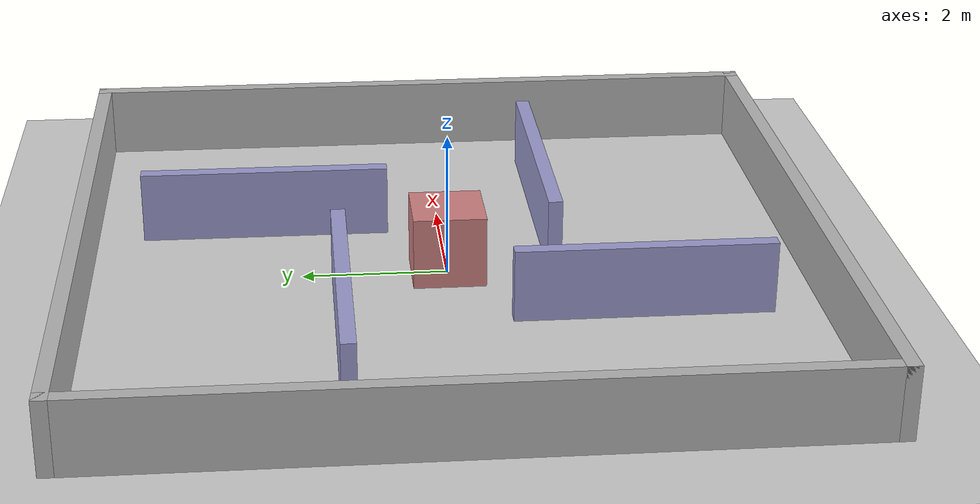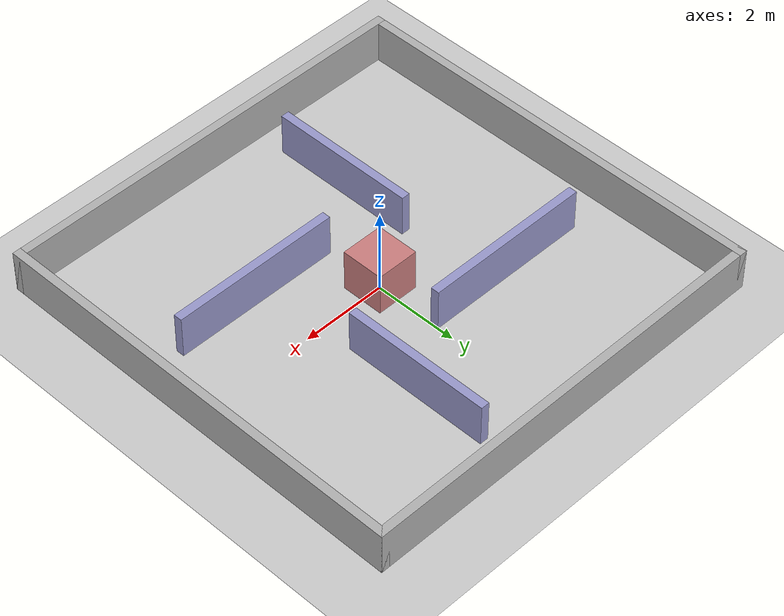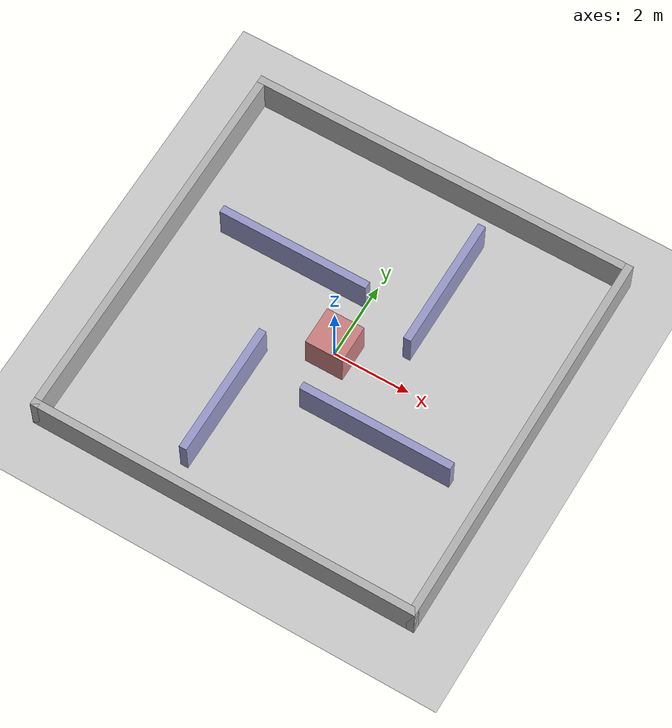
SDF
<?xml version="1.0" ?>
<sdf version="1.6">
  <world name="maze_world">
    <include>
      <uri>model://ground_plane</uri>
    </include>
    <include>
      <uri>model://sun</uri>
    </include>

    <scene>
      <shadows>false</shadows>
    </scene>

    <gui fullscreen='0'>
      <camera name='user_camera'>
        <pose frame=''>0.0 0.0 16.0 0 1.5707 1.5707</pose>
        <view_controller>orbit</view_controller>
      </camera>
    </gui>

    <physics type="ode">
      <real_time_update_rate>1000.0</real_time_update_rate>
      <max_step_size>0.001</max_step_size>
      <real_time_factor>1</real_time_factor>
    </physics>

    <!-- Outer Boundary Walls (10m x 10m) -->
    <model name="wall_north">
      <static>1</static>
      <pose>0 5 0.5 0 0 0</pose>
      <link name="link">
        <collision name="collision"><geometry><box><size>10.2 0.2 1.0</size></box></geometry></collision>
        <visual name="visual">
          <geometry><box><size>10.2 0.2 1.0</size></box></geometry>
          <material><ambient>0.6 0.6 0.6 1</ambient><diffuse>0.7 0.7 0.7 1</diffuse></material>
        </visual>
      </link>
    </model>

    <model name="wall_south">
      <static>1</static>
      <pose>0 -5 0.5 0 0 0</pose>
      <link name="link">
        <collision name="collision"><geometry><box><size>10.2 0.2 1.0</size></box></geometry></collision>
        <visual name="visual">
          <geometry><box><size>10.2 0.2 1.0</size></box></geometry>
          <material><ambient>0.6 0.6 0.6 1</ambient><diffuse>0.7 0.7 0.7 1</diffuse></material>
        </visual>
      </link>
    </model>

    <model name="wall_east">
      <static>1</static>
      <pose>5 0 0.5 0 0 0</pose>
      <link name="link">
        <collision name="collision"><geometry><box><size>0.2 10.2 1.0</size></box></geometry></collision>
        <visual name="visual">
          <geometry><box><size>0.2 10.2 1.0</size></box></geometry>
          <material><ambient>0.6 0.6 0.6 1</ambient><diffuse>0.7 0.7 0.7 1</diffuse></material>
        </visual>
      </link>
    </model>

    <model name="wall_west">
      <static>1</static>
      <pose>-5 0 0.5 0 0 0</pose>
      <link name="link">
        <collision name="collision"><geometry><box><size>0.2 10.2 1.0</size></box></geometry></collision>
        <visual name="visual">
          <geometry><box><size>0.2 10.2 1.0</size></box></geometry>
          <material><ambient>0.6 0.6 0.6 1</ambient><diffuse>0.7 0.7 0.7 1</diffuse></material>
        </visual>
      </link>
    </model>

    <!-- Interior Maze Dividers and Corridors -->
    <model name="inner_wall_1">
      <static>1</static>
      <pose>-2.0 1.5 0.5 0 0 0</pose>
      <link name="link">
        <collision name="collision"><geometry><box><size>4.0 0.2 1.0</size></box></geometry></collision>
        <visual name="visual">
          <geometry><box><size>4.0 0.2 1.0</size></box></geometry>
          <material><ambient>0.5 0.5 0.7 1</ambient><diffuse>0.6 0.6 0.8 1</diffuse></material>
        </visual>
      </link>
    </model>

    <model name="inner_wall_2">
      <static>1</static>
      <pose>2.0 -1.5 0.5 0 0 0</pose>
      <link name="link">
        <collision name="collision"><geometry><box><size>4.0 0.2 1.0</size></box></geometry></collision>
        <visual name="visual">
          <geometry><box><size>4.0 0.2 1.0</size></box></geometry>
          <material><ambient>0.5 0.5 0.7 1</ambient><diffuse>0.6 0.6 0.8 1</diffuse></material>
        </visual>
      </link>
    </model>

    <model name="inner_wall_3">
      <static>1</static>
      <pose>1.5 2.5 0.5 0 0 0</pose>
      <link name="link">
        <collision name="collision"><geometry><box><size>0.2 3.5 1.0</size></box></geometry></collision>
        <visual name="visual">
          <geometry><box><size>0.2 3.5 1.0</size></box></geometry>
          <material><ambient>0.5 0.5 0.7 1</ambient><diffuse>0.6 0.6 0.8 1</diffuse></material>
        </visual>
      </link>
    </model>

    <model name="inner_wall_4">
      <static>1</static>
      <pose>-1.5 -2.5 0.5 0 0 0</pose>
      <link name="link">
        <collision name="collision"><geometry><box><size>0.2 3.5 1.0</size></box></geometry></collision>
        <visual name="visual">
          <geometry><box><size>0.2 3.5 1.0</size></box></geometry>
          <material><ambient>0.5 0.5 0.7 1</ambient><diffuse>0.6 0.6 0.8 1</diffuse></material>
        </visual>
      </link>
    </model>

    <model name="center_pillar">
      <static>1</static>
      <pose>0 0 0.5 0 0 0</pose>
      <link name="link">
        <collision name="collision"><geometry><box><size>1.0 1.0 1.0</size></box></geometry></collision>
        <visual name="visual">
          <geometry><box><size>1.0 1.0 1.0</size></box></geometry>
          <material><ambient>0.7 0.5 0.5 1</ambient><diffuse>0.8 0.5 0.5 1</diffuse></material>
        </visual>
      </link>
    </model>

  </world>
</sdf>
